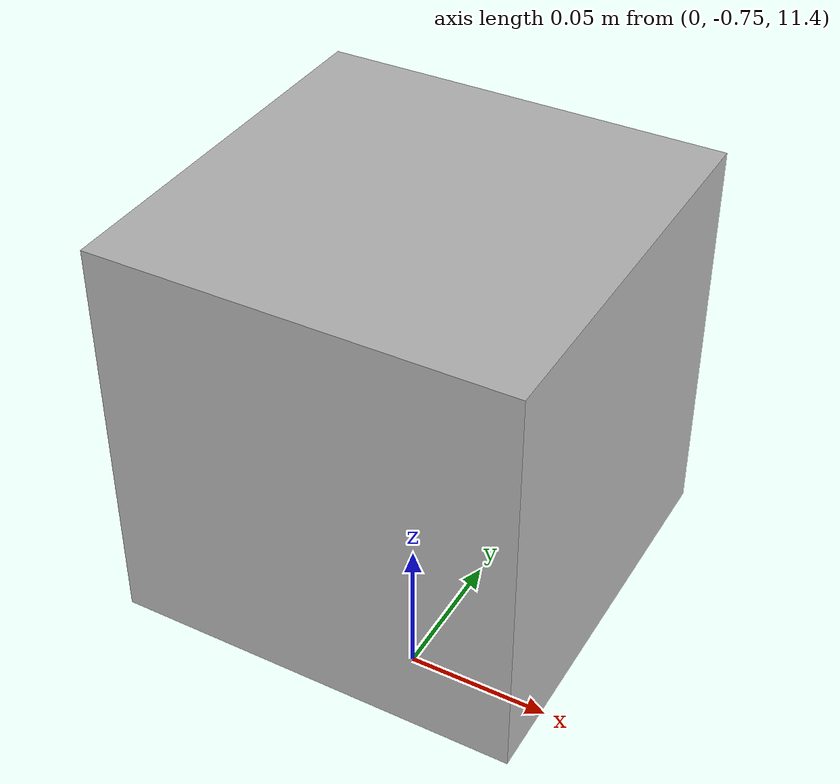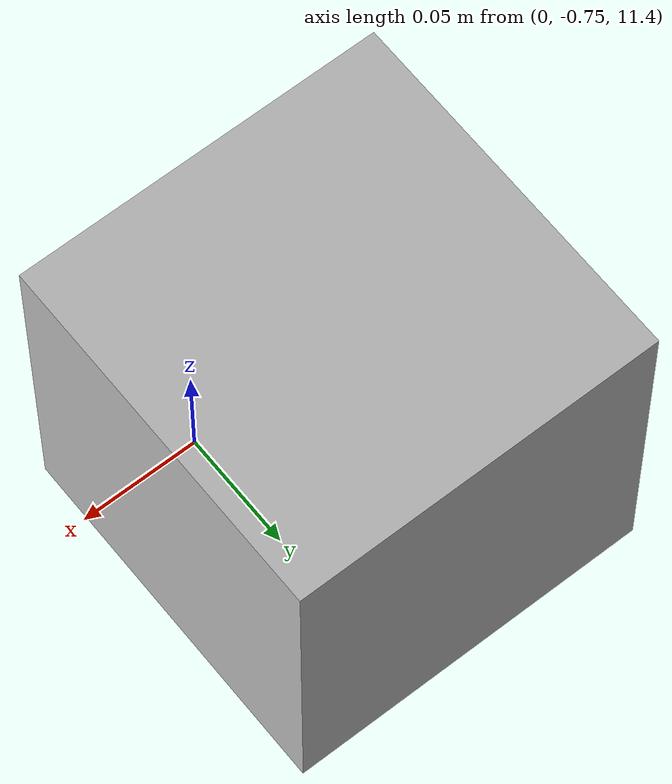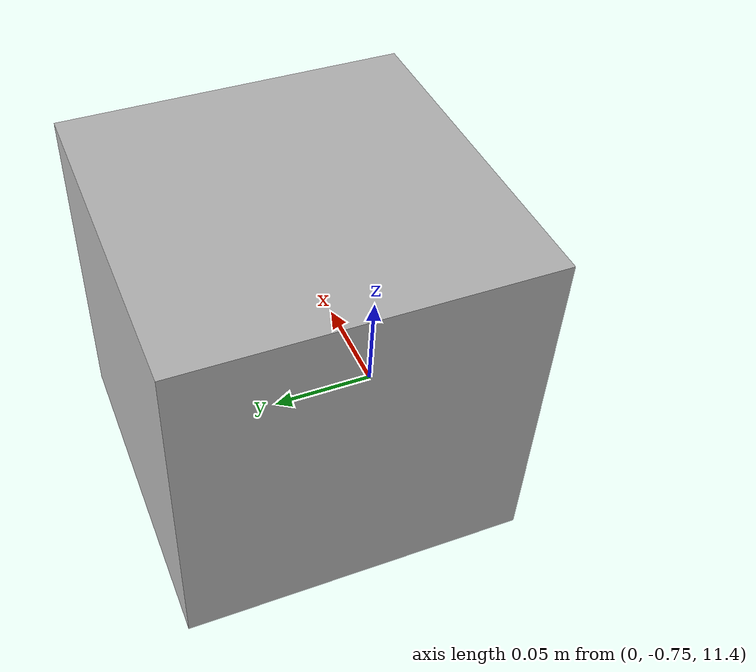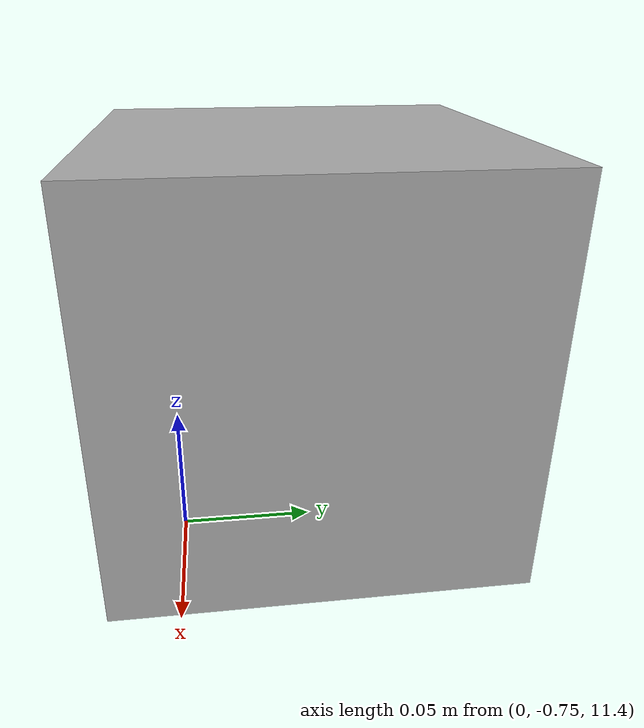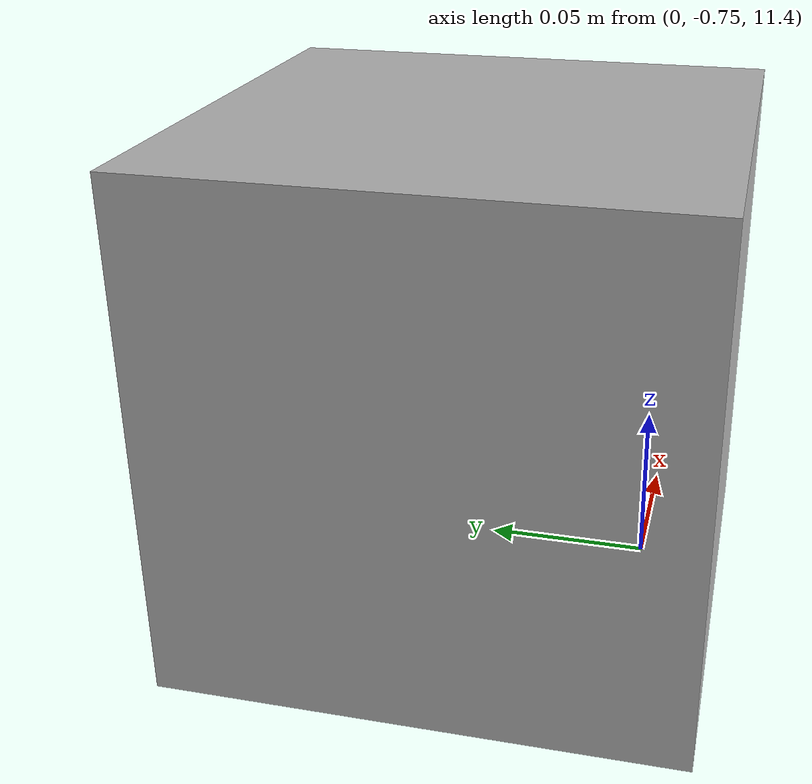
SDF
<sdf version="1.7">
 <world name="default">
  <model name="orthogonal_747_2.000.15_TS">
   <static>1</static>
   <link name="u_link_6_2_3">
    <inertial>
     <mass>1</mass>
     <inertia>
      <ixx>0.166667</ixx>
      <ixy>0</ixy>
      <ixz>0</ixz>
      <iyy>0.166667</iyy>
      <iyz>0</iyz>
      <izz>0.166667</izz>
     </inertia>
    </inertial>
    <pose>6.45 4.3 13.975 0 -0 0</pose>
    <visual name="visual_0">
     <laser_retro>5797</laser_retro>
     <geometry><box><size>0.15 1e-06 0.15</size></box></geometry>
     <material>
      <script><name>Gazebo/Grey</name><uri>file://media/materials/scripts/gazebo.material</uri></script>
      <shader type="pixel"><normal_map>__default__</normal_map></shader>
      <ambient>0.678 0.498 0.659 1</ambient>
      <diffuse>0.7 0.7 0.7 1</diffuse>
      <specular>0.01 0.01 0.01 1</specular>
      <emissive>0 0 0 1</emissive>
     </material>
     <pose>0 -0.075 0 0 -0 0</pose>
     <transparency>1</transparency>
    </visual>
    <visual name="visual_1">
     <laser_retro>5798</laser_retro>
     <geometry><box><size>0.15 1e-06 0.15</size></box></geometry>
     <material>
      <script><name>Gazebo/Grey</name><uri>file://media/materials/scripts/gazebo.material</uri></script>
      <shader type="pixel"><normal_map>__default__</normal_map></shader>
      <ambient>0.447 0.624 0.812 1</ambient>
      <diffuse>0.7 0.7 0.7 1</diffuse>
      <specular>0.01 0.01 0.01 1</specular>
      <emissive>0 0 0 1</emissive>
     </material>
     <pose>0 0.075 0 0 -0 0</pose>
     <transparency>1</transparency>
    </visual>
    <visual name="visual_2">
     <laser_retro>5799</laser_retro>
     <geometry><box><size>0.15 0.15 1e-06</size></box></geometry>
     <material>
      <script><name>Gazebo/Grey</name><uri>file://media/materials/scripts/gazebo.material</uri></script>
      <shader type="pixel"><normal_map>__default__</normal_map></shader>
      <ambient>0.988 0.686 0.243 1</ambient>
      <diffuse>0.7 0.7 0.7 1</diffuse>
      <specular>0.01 0.01 0.01 1</specular>
      <emissive>0 0 0 1</emissive>
     </material>
     <pose>0 0 -0.075 0 -0 0</pose>
     <transparency>1</transparency>
    </visual>
    <visual name="visual_3">
     <laser_retro>5800</laser_retro>
     <geometry><box><size>1e-06 0.15 0.15</size></box></geometry>
     <material>
      <script><name>Gazebo/Grey</name><uri>file://media/materials/scripts/gazebo.material</uri></script>
      <shader type="pixel"><normal_map>__default__</normal_map></shader>
      <ambient>0.988 0.914 0.31 1</ambient>
      <diffuse>0.7 0.7 0.7 1</diffuse>
      <specular>0.01 0.01 0.01 1</specular>
      <emissive>0 0 0 1</emissive>
     </material>
     <pose>0.075 0 0 0 -0 0</pose>
     <transparency>1</transparency>
    </visual>
    <visual name="visual_4">
     <laser_retro>5801</laser_retro>
     <geometry><box><size>0.15 0.15 1e-06</size></box></geometry>
     <material>
      <script><name>Gazebo/Grey</name><uri>file://media/materials/scripts/gazebo.material</uri></script>
      <shader type="pixel"><normal_map>__default__</normal_map></shader>
      <ambient>0.937 0.161 0.161 1</ambient>
      <diffuse>0.7 0.7 0.7 1</diffuse>
      <specular>0.01 0.01 0.01 1</specular>
      <emissive>0 0 0 1</emissive>
     </material>
     <pose>0 0 0.075 0 -0 0</pose>
     <transparency>1</transparency>
    </visual>
    <visual name="visual_5">
     <laser_retro>5802</laser_retro>
     <geometry><box><size>1e-06 0.15 0.15</size></box></geometry>
     <material>
      <script><name>Gazebo/Grey</name><uri>file://media/materials/scripts/gazebo.material</uri></script>
      <shader type="pixel"><normal_map>__default__</normal_map></shader>
      <ambient>0.541 0.886 0.204 1</ambient>
      <diffuse>0.7 0.7 0.7 1</diffuse>
      <specular>0.01 0.01 0.01 1</specular>
      <emissive>0 0 0 1</emissive>
     </material>
     <pose>-0.075 0 0 0 -0 0</pose>
     <transparency>1</transparency>
    </visual>
    <visual name="visual_texture">
     <geometry><box><size>0.149985 0.149985 0.149985</size></box></geometry>
     <material>
      <script>
       <uri>model://BASE_MODELS/simple_block_v2_textured/materials/scripts</uri>
       <uri>model://BASE_MODELS/simple_block_v2_textured/materials/textures</uri>
       <name>metal</name>
      </script>
     </material>
     <laser_retro>5803</laser_retro>
    </visual>
    <collision name="collision">
     <geometry><box><size>0.15 0.15 0.15</size></box></geometry>
     <surface>
      <friction>
       <ode><mu>1</mu><mu2>1</mu2><fdir1>0 0 0</fdir1><slip1>0</slip1><slip2>0</slip2></ode>
       <torsional>
        <coefficient>1</coefficient>
        <patch_radius>0</patch_radius>
        <surface_radius>0</surface_radius>
        <use_patch_radius>1</use_patch_radius>
        <ode><slip>0</slip></ode>
       </torsional>
      </friction>
      <bounce><restitution_coefficient>0</restitution_coefficient><threshold>1e+06</threshold></bounce>
      <contact>
       <collide_without_contact>0</collide_without_contact>
       <collide_without_contact_bitmask>1</collide_without_contact_bitmask>
       <collide_bitmask>1</collide_bitmask>
       <ode>
        <soft_cfm>0</soft_cfm>
        <soft_erp>0.2</soft_erp>
        <kp>1e+13</kp>
        <kd>1</kd>
        <max_vel>0.01</max_vel>
        <min_depth>0</min_depth>
       </ode>
       <bullet>
        <split_impulse>1</split_impulse>
        <split_impulse_penetration_threshold>-0.01</split_impulse_penetration_threshold>
        <soft_cfm>0</soft_cfm>
        <soft_erp>0.2</soft_erp>
        <kp>1e+13</kp>
        <kd>1</kd>
       </bullet>
      </contact>
     </surface>
    </collision>
   </link>
   <pose>-6.47624 -5 -2.5 0 -0 0</pose>
  </model>
 </world>
</sdf>
